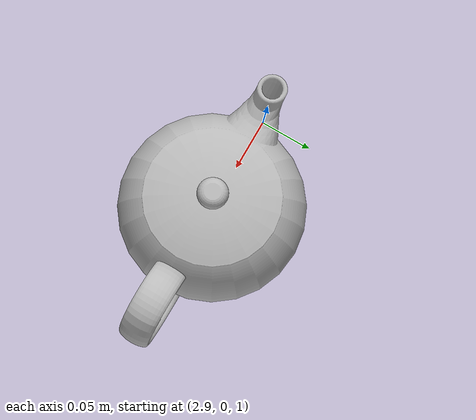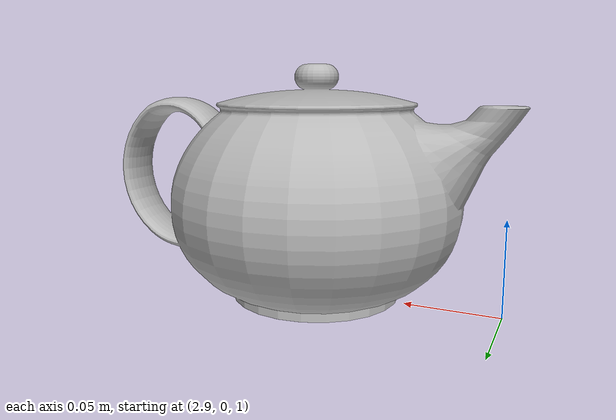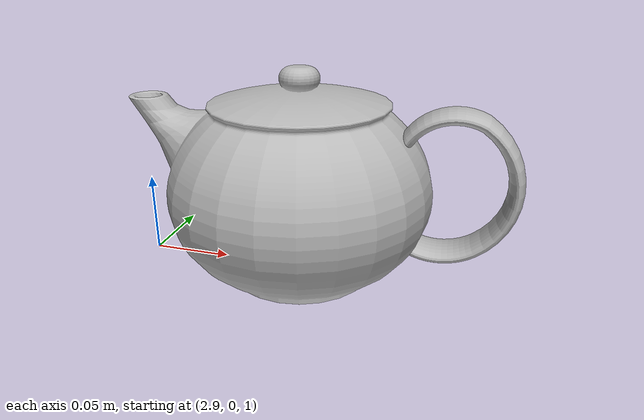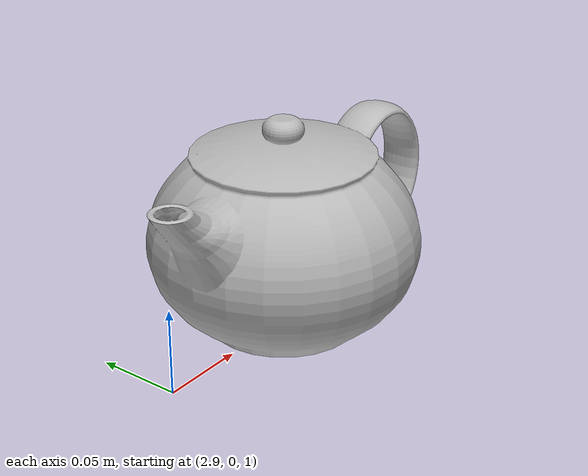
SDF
<sdf version="1.4">
    <model name="teapot">
        <pose>3.000000 0.000000 1.000000 0.000000 -0.000000 0.000000</pose>
        <static>1</static>
        <link name="teapot_link">
            <pose>0.000000 0.000000 0.000000 0.000000 -0.000000 0.000000</pose>

            <collision name="plate_collision">
                <pose>0.000000 0.000000 0.000000 0.000000 -0.000000 0.000000</pose>
                <geometry>
                    <mesh>
                        <uri>/home/furdek/catkin_ws/src/gazebo_pkg/models/teapot/meshes/teapot.stl</uri>
                        <scale>1 1 1</scale>
                    </mesh>
                </geometry>

            </collision>

            <visual name="teapot_visual">
                <pose>0.000000 0.000000 0.000000 0.000000 -0.000000 0.000000</pose>
                <geometry>
                    <mesh>
                        <uri>/home/furdek/catkin_ws/src/gazebo_pkg/models/teapot/meshes/teapot.stl</uri>
                        <scale>1 1 1</scale>
                    </mesh>
                </geometry>
            </visual>
        </link>
    </model>
</sdf>
